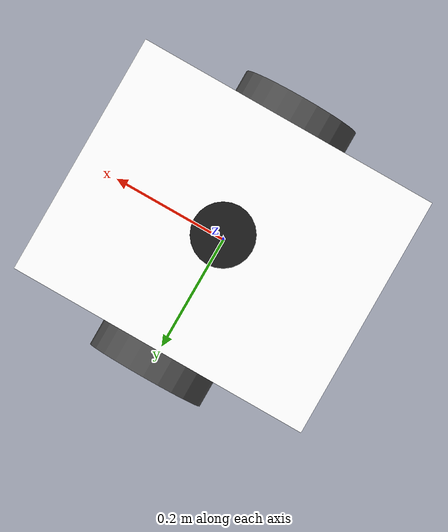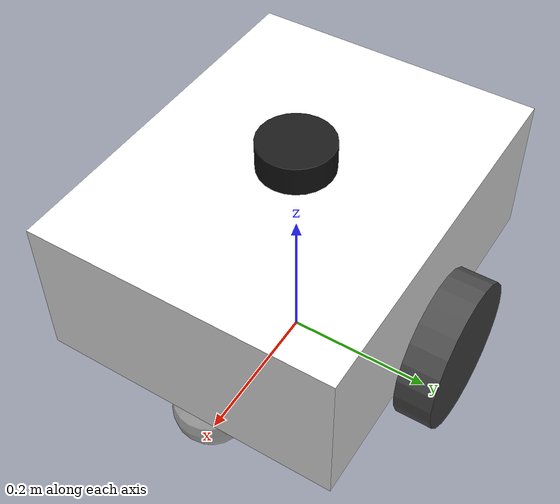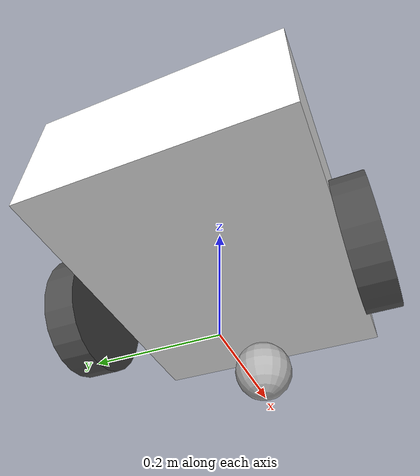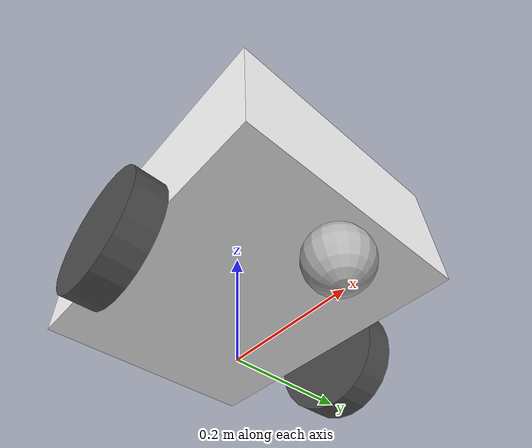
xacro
<?xml version="1.0"?>
<robot xmlns:xacro="http://www.ros.org/wiki/xacro" name="hospital_bot">

  <!--                          PROPERTIES                                -->

  <!-- Chassis dimensions -->
  <xacro:property name="chassis_length"  value="0.5"/>
  <xacro:property name="chassis_width"   value="0.4"/>
  <xacro:property name="chassis_height"  value="0.2"/>
  <xacro:property name="chassis_mass"    value="15.0"/>

  <!-- Drive wheel dimensions -->
  <xacro:property name="wheel_radius"     value="0.1"/>
  <xacro:property name="wheel_width"      value="0.05"/>
  <xacro:property name="wheel_mass"       value="1.0"/>
  <xacro:property name="wheel_separation" value="0.45"/>

  <!-- Caster wheel dimensions -->
  <xacro:property name="caster_radius" value="0.05"/>
  <xacro:property name="caster_mass"   value="0.5"/>

  <!-- Lidar dimensions -->
  <xacro:property name="lidar_radius" value="0.05"/>
  <xacro:property name="lidar_height" value="0.04"/>
  <xacro:property name="lidar_mass"   value="0.2"/>

  <!--                       INERTIA MACROS                               -->

  <xacro:macro name="box_inertia" params="m x y z">
    <inertial>
      <mass value="${m}"/>
      <inertia
        ixx="${(1.0/12.0)*m*(y*y + z*z)}" ixy="0.0" ixz="0.0"
        iyy="${(1.0/12.0)*m*(x*x + z*z)}" iyz="0.0"
        izz="${(1.0/12.0)*m*(x*x + y*y)}"/>
    </inertial>
  </xacro:macro>

  <xacro:macro name="cylinder_inertia" params="m r h">
    <inertial>
      <mass value="${m}"/>
      <inertia
        ixx="${(1.0/12.0)*m*(3.0*r*r + h*h)}" ixy="0.0" ixz="0.0"
        iyy="${(1.0/12.0)*m*(3.0*r*r + h*h)}" iyz="0.0"
        izz="${(1.0/2.0)*m*r*r}"/>
    </inertial>
  </xacro:macro>

  <xacro:macro name="sphere_inertia" params="m r">
    <inertial>
      <mass value="${m}"/>
      <inertia
        ixx="${(2.0/5.0)*m*r*r}" ixy="0.0" ixz="0.0"
        iyy="${(2.0/5.0)*m*r*r}" iyz="0.0"
        izz="${(2.0/5.0)*m*r*r}"/>
    </inertial>
  </xacro:macro>

  <!--                         MATERIALS                                  -->

  <material name="white">
    <color rgba="1.0 1.0 1.0 1.0"/>
  </material>

  <material name="dark_gray">
    <color rgba="0.3 0.3 0.3 1.0"/>
  </material>

  <material name="light_gray">
    <color rgba="0.7 0.7 0.7 1.0"/>
  </material>

  <material name="black">
    <color rgba="0.1 0.1 0.1 1.0"/>
  </material>

  <!--                        WHEEL MACRO                                 -->

  <xacro:macro name="wheel" params="name y_offset">

    <link name="${name}_wheel">
      <visual>
        <origin xyz="0 0 0" rpy="${pi/2.0} 0 0"/>
        <geometry>
          <cylinder radius="${wheel_radius}" length="${wheel_width}"/>
        </geometry>
        <material name="dark_gray"/>
      </visual>
      <collision>
        <origin xyz="0 0 0" rpy="${pi/2.0} 0 0"/>
        <geometry>
          <cylinder radius="${wheel_radius}" length="${wheel_width}"/>
        </geometry>
      </collision>
      <xacro:cylinder_inertia m="${wheel_mass}" r="${wheel_radius}" h="${wheel_width}"/>
    </link>

    <joint name="${name}_wheel_joint" type="continuous">
      <parent link="base_link"/>
      <child link="${name}_wheel"/>
      <origin xyz="0 ${y_offset} 0" rpy="0 0 0"/>
      <axis xyz="0 1 0"/>
      <dynamics damping="0.1" friction="0.1"/>
    </joint>

    <!-- Gazebo: wheel color and surface friction -->
    <gazebo reference="${name}_wheel">
      <material>
        <ambient>0.3 0.3 0.3 1.0</ambient>
        <diffuse>0.3 0.3 0.3 1.0</diffuse>
        <specular>0.1 0.1 0.1 1.0</specular>
      </material>
      <mu1>1.0</mu1>
      <mu2>1.0</mu2>
    </gazebo>

  </xacro:macro>

  <!--                    1. BASE FOOTPRINT                               -->

  <!-- Empty link required by Nav2 as the ground-plane projection -->
  <link name="base_footprint"/>

  <joint name="base_footprint_joint" type="fixed">
    <parent link="base_footprint"/>
    <child link="base_link"/>
    <origin xyz="0 0 ${wheel_radius}" rpy="0 0 0"/>
  </joint>

  <!--                    2. BASE LINK (CHASSIS)                          -->

  <link name="base_link">
    <visual>
      <origin xyz="0 0 ${chassis_height/2.0}" rpy="0 0 0"/>
      <geometry>
        <box size="${chassis_length} ${chassis_width} ${chassis_height}"/>
      </geometry>
      <material name="white"/>
    </visual>
    <collision>
      <origin xyz="0 0 ${chassis_height/2.0}" rpy="0 0 0"/>
      <geometry>
        <box size="${chassis_length} ${chassis_width} ${chassis_height}"/>
      </geometry>
    </collision>
    <xacro:box_inertia m="${chassis_mass}"
                       x="${chassis_length}"
                       y="${chassis_width}"
                       z="${chassis_height}"/>
  </link>

  <!--                 3. LEFT AND RIGHT WHEELS                           -->

  <xacro:wheel name="left"  y_offset="${ wheel_separation/2.0}"/>
  <xacro:wheel name="right" y_offset="${-wheel_separation/2.0}"/>

  <!--                    4. CASTER WHEEL                                 -->

  <link name="caster_wheel">
    <visual>
      <geometry>
        <sphere radius="${caster_radius}"/>
      </geometry>
      <material name="light_gray"/>
    </visual>
    <collision>
      <geometry>
        <sphere radius="${caster_radius}"/>
      </geometry>
    </collision>
    <xacro:sphere_inertia m="${caster_mass}" r="${caster_radius}"/>
  </link>

  <joint name="caster_wheel_joint" type="fixed">
    <parent link="base_link"/>
    <child link="caster_wheel"/>
    <!-- Front-bottom of chassis: x forward, z down to ground contact -->
    <origin xyz="${chassis_length/2.0 - caster_radius} 0 ${-(wheel_radius - caster_radius)}"
            rpy="0 0 0"/>
  </joint>

  <!--                      5. LASER (LIDAR)                              -->

  <link name="laser">
    <visual>
      <geometry>
        <cylinder radius="${lidar_radius}" length="${lidar_height}"/>
      </geometry>
      <material name="black"/>
    </visual>
    <collision>
      <geometry>
        <cylinder radius="${lidar_radius}" length="${lidar_height}"/>
      </geometry>
    </collision>
    <xacro:cylinder_inertia m="${lidar_mass}" r="${lidar_radius}" h="${lidar_height}"/>
  </link>

  <joint name="laser_joint" type="fixed">
    <parent link="base_link"/>
    <child link="laser"/>
    <!-- Top-center of chassis -->
    <origin xyz="0 0 ${chassis_height + lidar_height/2.0}" rpy="0 0 0"/>
  </joint>

  <!--                   GAZEBO MATERIAL COLORS                           -->

  <gazebo reference="base_link">
    <material>
      <ambient>1.0 1.0 1.0 1.0</ambient>
      <diffuse>1.0 1.0 1.0 1.0</diffuse>
      <specular>0.5 0.5 0.5 1.0</specular>
    </material>
  </gazebo>

  <gazebo reference="caster_wheel">
    <material>
      <ambient>0.7 0.7 0.7 1.0</ambient>
      <diffuse>0.7 0.7 0.7 1.0</diffuse>
      <specular>0.3 0.3 0.3 1.0</specular>
    </material>
    <!-- Near-frictionless surface for passive caster -->
    <mu1>0.001</mu1>
    <mu2>0.001</mu2>
  </gazebo>

  <gazebo reference="laser">
    <material>
      <ambient>0.1 0.1 0.1 1.0</ambient>
      <diffuse>0.1 0.1 0.1 1.0</diffuse>
      <specular>0.1 0.1 0.1 1.0</specular>
    </material>
  </gazebo>

  <!--              GAZEBO PLUGINS — CLASSIC GAZEBO 11 (gazebo_ros)       -->

  <!-- Joint State Publisher: publishes wheel joint states to /joint_states -->
  <gazebo>
    <plugin name="joint_state_publisher" filename="libgazebo_ros_joint_state_publisher.so">
      <update_rate>30</update_rate>
      <joint_name>left_wheel_joint</joint_name>
      <joint_name>right_wheel_joint</joint_name>
    </plugin>
  </gazebo>

  <!-- Differential Drive Controller:
       Subscribes to cmd_vel, publishes odom + odom→base_footprint TF -->
  <gazebo>
    <plugin name="differential_drive_controller" filename="libgazebo_ros_diff_drive.so">
      <update_rate>30</update_rate>
      <left_joint>left_wheel_joint</left_joint>
      <right_joint>right_wheel_joint</right_joint>
      <wheel_separation>${wheel_separation}</wheel_separation>
      <wheel_diameter>${wheel_radius * 2.0}</wheel_diameter>
      <max_wheel_torque>20</max_wheel_torque>
      <max_wheel_acceleration>1.0</max_wheel_acceleration>
      <command_topic>cmd_vel</command_topic>
      <publish_odom>true</publish_odom>
      <publish_odom_tf>true</publish_odom_tf>
      <publish_wheel_tf>false</publish_wheel_tf>
      <odometry_topic>odom</odometry_topic>
      <odometry_frame>odom</odometry_frame>
      <robot_base_frame>base_footprint</robot_base_frame>
    </plugin>
  </gazebo>

  <!-- Lidar Sensor on the laser link: CPU raycast sensor (no GPU rendering
       required), 360-degree horizontal scan, 0.12-8.0 m range -->
  <gazebo reference="laser">
    <sensor name="lidar" type="ray">
      <pose>0 0 0 0 0 0</pose>
      <update_rate>10</update_rate>
      <always_on>true</always_on>
      <visualize>true</visualize>
      <ray>
        <scan>
          <horizontal>
            <samples>360</samples>
            <resolution>1</resolution>
            <min_angle>-3.141592653589793</min_angle>
            <max_angle>3.141592653589793</max_angle>
          </horizontal>
        </scan>
        <range>
          <min>0.12</min>
          <max>8.0</max>
          <resolution>0.01</resolution>
        </range>
        <noise>
          <type>gaussian</type>
          <mean>0.0</mean>
          <stddev>0.01</stddev>
        </noise>
      </ray>
      <plugin name="laser_controller" filename="libgazebo_ros_ray_sensor.so">
        <ros>
          <remapping>~/out:=scan</remapping>
        </ros>
        <output_type>sensor_msgs/LaserScan</output_type>
        <frame_name>laser</frame_name>
      </plugin>
    </sensor>
  </gazebo>

</robot>
